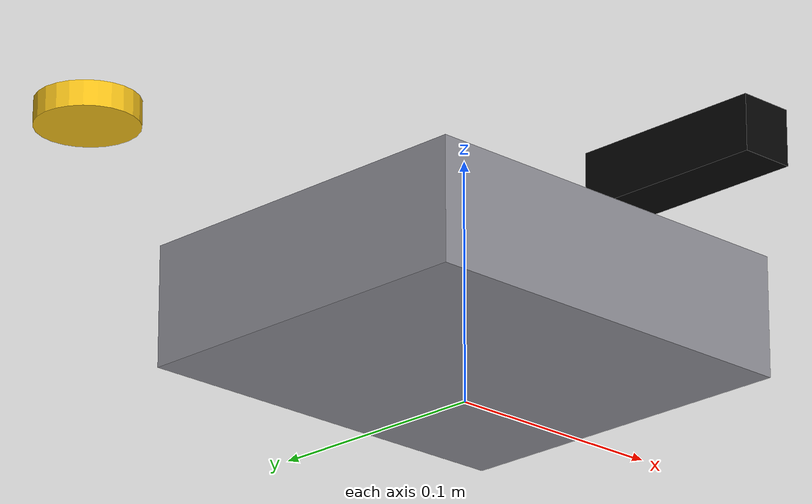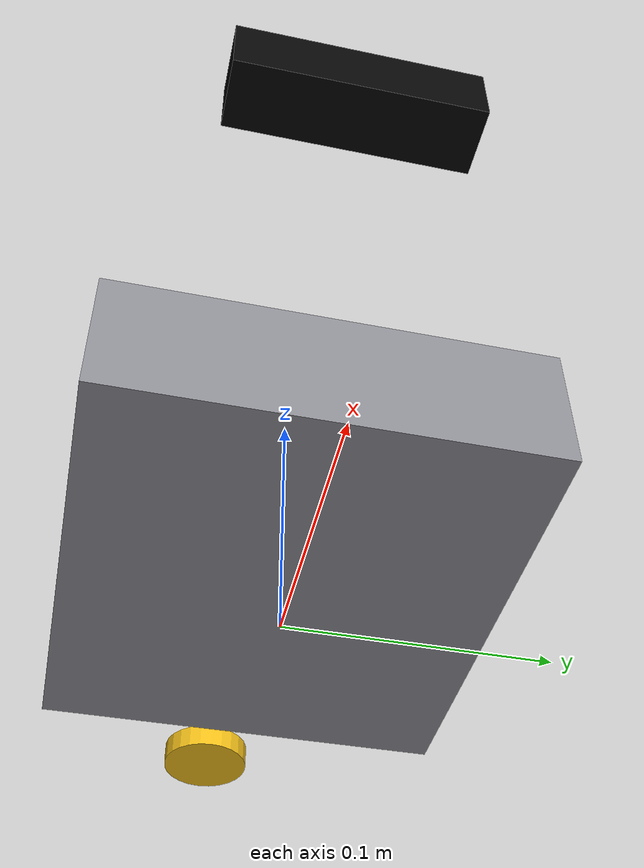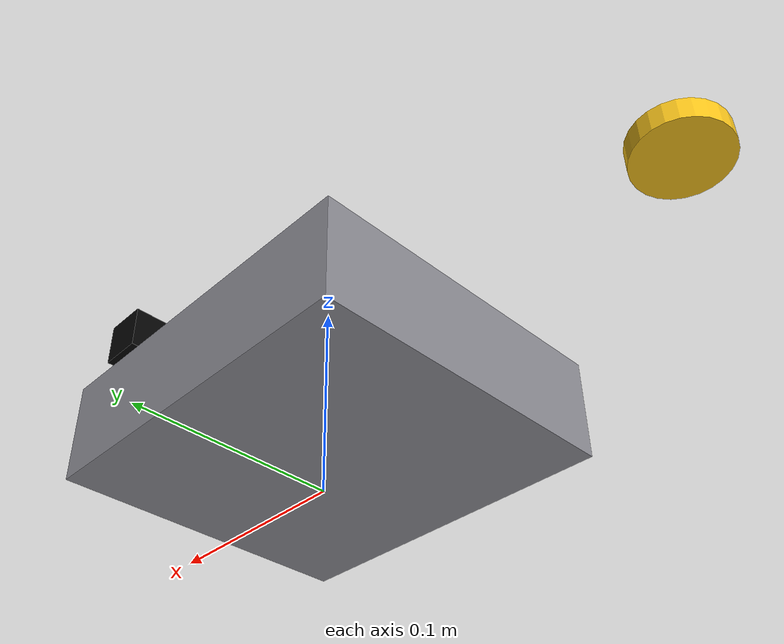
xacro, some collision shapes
<?xml version="1.0"?>
<robot xmlns:xacro="http://www.ros.org/wiki/xacro" name="mari">
  <xacro:arg name="use_mesh_visual" default="true"/>
  <xacro:arg name="sim_camera_update_rate" default="15.0"/>
  <xacro:arg name="sim_camera_width" default="640"/>
  <xacro:arg name="sim_camera_height" default="480"/>
  <xacro:arg name="sim_camera_visualize" default="true"/>
  <xacro:property name="mesh_file" value="package://trashbot_description/meshes/mari_visual_mesh.stl"/>

  <xacro:property name="base_length" value="0.1776"/>
  <xacro:property name="base_width" value="0.1580"/>
  <xacro:property name="base_height" value="0.0504"/>
  <xacro:property name="base_mass" value="6.0"/>
  <xacro:property name="base_link_z" value="${base_height / 2.0}"/>
  <!-- Onshape STL export axis correction: keep ROS links fixed and rotate only the visual mesh. -->
  <xacro:property name="chassis_mesh_yaw" value="${pi / 2.0}"/>
  <xacro:property name="chassis_mesh_min_z" value="-0.021884"/>
  <xacro:property name="chassis_mesh_z" value="${-base_link_z - chassis_mesh_min_z}"/>

  <!-- Collision stays simple even if the visual mesh includes tracks/sprockets. -->
  <xacro:property name="collision_length" value="${base_length}"/>
  <xacro:property name="collision_width" value="${base_width}"/>
  <xacro:property name="collision_height" value="${base_height}"/>
  <xacro:property name="collision_z" value="0.012"/>

  <!-- Tracked drive geometry first Onshape measurements. -->
  <xacro:property name="track_width" value="0.137553"/>
  <xacro:property name="half_track_width" value="${track_width / 2.0}"/>
  <xacro:property name="effective_track_radius" value="0.021"/>

  <!-- Actual asymmetric drive sprocket centers from base_link, kept as CAD reference. -->
  <xacro:property name="left_drive_axis_x" value="-0.057871"/>
  <xacro:property name="left_drive_axis_y" value="0.068776"/>
  <xacro:property name="left_drive_axis_z" value="-0.000300"/>
  <xacro:property name="right_drive_axis_x" value="0.058000"/>
  <xacro:property name="right_drive_axis_y" value="-0.068777"/>
  <xacro:property name="right_drive_axis_z" value="0.000000"/>

  <xacro:property name="track_contact_x_offset" value="0.058"/>
  <xacro:property name="front_track_wheel_x" value="${track_contact_x_offset}"/>
  <xacro:property name="rear_track_wheel_x" value="${-track_contact_x_offset}"/>
  <xacro:property name="left_track_wheel_y" value="${half_track_width}"/>
  <xacro:property name="right_track_wheel_y" value="${-half_track_width}"/>
  <xacro:property name="virtual_wheel_z" value="${effective_track_radius - base_link_z}"/>
  <xacro:property name="virtual_wheel_width" value="0.014"/>
  <xacro:property name="virtual_wheel_mass" value="0.08"/>

  <!-- D435i mount measurement from base_link_mc to camera_link_mc.
       2026-04-28: lowered 10 mm from the 2026-04-27 0.122174 m reference. -->
  <xacro:property name="camera_x" value="0.127688"/>
  <xacro:property name="camera_y" value="-0.001695"/>
  <xacro:property name="camera_z" value="0.112174"/>
  <xacro:property name="camera_roll" value="0.0"/>
  <xacro:property name="camera_pitch" value="0.0"/>
  <xacro:property name="camera_yaw" value="0.0"/>
  <xacro:property name="sim_camera_horizontal_fov" value="1.3962634"/>
  <xacro:property name="sim_camera_near_clip" value="0.10"/>
  <xacro:property name="sim_camera_far_clip" value="6.00"/>

  <!-- BNO08x first Onshape measurement from base_link_mc to imu_link_mc. -->
  <xacro:property name="imu_x" value="-0.010844"/>
  <xacro:property name="imu_y" value="0.022228"/>
  <xacro:property name="imu_z" value="0.018394"/>
  <xacro:property name="imu_roll" value="0.0"/>
  <xacro:property name="imu_pitch" value="0.0"/>
  <xacro:property name="imu_yaw" value="0.0"/>
  <xacro:property name="sim_imu_update_rate" value="100.0"/>

  <!-- GPS first Onshape measurement from base_link_mc to gps_link_mc. -->
  <xacro:property name="gps_x" value="-0.194160"/>
  <xacro:property name="gps_y" value="-0.000001"/>
  <xacro:property name="gps_z" value="0.037943"/>
  <xacro:property name="gps_r" value="0.020"/>
  <xacro:property name="gps_h" value="0.010"/>
  <xacro:property name="sim_gps_update_rate" value="5.0"/>

  <material name="chassis_gray">
    <color rgba="0.55 0.55 0.58 1.0"/>
  </material>
  <material name="sensor_black">
    <color rgba="0.02 0.02 0.02 1.0"/>
  </material>
  <material name="imu_green">
    <color rgba="0.0 0.65 0.25 1.0"/>
  </material>
  <material name="gps_yellow">
    <color rgba="0.95 0.75 0.1 1.0"/>
  </material>
  <material name="virtual_wheel_dark">
    <color rgba="0.03 0.03 0.03 1.0"/>
  </material>

  <xacro:macro name="box_inertial" params="mass x y z">
    <inertial>
      <mass value="${mass}"/>
      <inertia
        ixx="${mass * (y*y + z*z) / 12.0}"
        ixy="0.0"
        ixz="0.0"
        iyy="${mass * (x*x + z*z) / 12.0}"
        iyz="0.0"
        izz="${mass * (x*x + y*y) / 12.0}"/>
    </inertial>
  </xacro:macro>

  <xacro:macro name="cylinder_inertial" params="mass radius length">
    <inertial>
      <mass value="${mass}"/>
      <inertia
        ixx="${mass * (3.0 * radius * radius + length * length) / 12.0}"
        ixy="0.0"
        ixz="0.0"
        iyy="${mass * radius * radius / 2.0}"
        iyz="0.0"
        izz="${mass * (3.0 * radius * radius + length * length) / 12.0}"/>
    </inertial>
  </xacro:macro>

  <xacro:macro name="virtual_track_wheel" params="prefix x y">
    <link name="${prefix}_virtual_track_wheel_link">
      <collision>
        <origin xyz="0 0 0" rpy="${pi / 2.0} 0 0"/>
        <geometry>
          <cylinder radius="${effective_track_radius}" length="${virtual_wheel_width}"/>
        </geometry>
      </collision>
      <xacro:cylinder_inertial
        mass="${virtual_wheel_mass}"
        radius="${effective_track_radius}"
        length="${virtual_wheel_width}"/>
    </link>

    <joint name="${prefix}_virtual_track_wheel_joint" type="continuous">
      <parent link="base_link"/>
      <child link="${prefix}_virtual_track_wheel_link"/>
      <origin xyz="${x} ${y} ${virtual_wheel_z}" rpy="0 0 0"/>
      <axis xyz="0 1 0"/>
    </joint>
  </xacro:macro>

  <link name="base_footprint"/>
  <link name="base_link"/>

  <joint name="base_footprint_to_base_link" type="fixed">
    <parent link="base_footprint"/>
    <child link="base_link"/>
    <origin xyz="0 0 ${base_link_z}" rpy="0 0 0"/>
  </joint>

  <link name="chassis_link">
    <visual name="mesh_visual">
      <xacro:if value="$(arg use_mesh_visual)">
      <origin xyz="0 0 ${chassis_mesh_z}" rpy="0 0 ${chassis_mesh_yaw}"/>
      <geometry>
        <mesh filename="${mesh_file}"/>
      </geometry>
      <material name="chassis_gray"/>
      </xacro:if>
      <xacro:unless value="$(arg use_mesh_visual)">
      <origin xyz="0 0 0" rpy="0 0 0"/>
      <geometry>
        <box size="${base_length} ${base_width} ${base_height}"/>
      </geometry>
      <material name="chassis_gray"/>
      </xacro:unless>
    </visual>
    <collision>
      <origin xyz="0 0 ${collision_z}" rpy="0 0 0"/>
      <geometry>
        <box size="${collision_length} ${collision_width} ${collision_height}"/>
      </geometry>
    </collision>
    <xacro:box_inertial
      mass="${base_mass}"
      x="${collision_length}"
      y="${collision_width}"
      z="${collision_height}"/>
  </link>

  <joint name="base_to_chassis" type="fixed">
    <parent link="base_link"/>
    <child link="chassis_link"/>
    <origin xyz="0 0 0" rpy="0 0 0"/>
  </joint>

  <xacro:virtual_track_wheel prefix="left_front" x="${front_track_wheel_x}" y="${left_track_wheel_y}"/>
  <xacro:virtual_track_wheel prefix="right_front" x="${front_track_wheel_x}" y="${right_track_wheel_y}"/>
  <xacro:virtual_track_wheel prefix="left_rear" x="${rear_track_wheel_x}" y="${left_track_wheel_y}"/>
  <xacro:virtual_track_wheel prefix="right_rear" x="${rear_track_wheel_x}" y="${right_track_wheel_y}"/>

  <link name="camera_link">
    <visual>
      <geometry>
        <box size="0.025 0.09 0.025"/>
      </geometry>
      <material name="sensor_black"/>
    </visual>
    <collision>
      <geometry>
        <box size="0.025 0.09 0.025"/>
      </geometry>
    </collision>
    <xacro:box_inertial mass="0.08" x="0.025" y="0.09" z="0.025"/>
  </link>

  <joint name="base_to_camera" type="fixed">
    <parent link="base_link"/>
    <child link="camera_link"/>
    <origin xyz="${camera_x} ${camera_y} ${camera_z}" rpy="${camera_roll} ${camera_pitch} ${camera_yaw}"/>
  </joint>

  <!-- D435i optical frame convention: z forward, x right, y down. -->
  <link name="camera_color_optical_frame"/>
  <joint name="camera_link_to_color_optical_frame" type="fixed">
    <parent link="camera_link"/>
    <child link="camera_color_optical_frame"/>
    <origin xyz="0 0 0" rpy="${-pi / 2.0} 0 ${-pi / 2.0}"/>
  </joint>

  <link name="camera_depth_optical_frame"/>
  <joint name="camera_link_to_depth_optical_frame" type="fixed">
    <parent link="camera_link"/>
    <child link="camera_depth_optical_frame"/>
    <origin xyz="0 0 0" rpy="${-pi / 2.0} 0 ${-pi / 2.0}"/>
  </joint>

  <link name="imu_link">
    <visual>
      <geometry>
        <box size="0.035 0.035 0.008"/>
      </geometry>
      <material name="imu_green"/>
    </visual>
    <collision>
      <geometry>
        <box size="0.035 0.035 0.008"/>
      </geometry>
    </collision>
    <xacro:box_inertial mass="0.01" x="0.035" y="0.035" z="0.008"/>
  </link>

  <joint name="base_to_imu" type="fixed">
    <parent link="base_link"/>
    <child link="imu_link"/>
    <origin xyz="${imu_x} ${imu_y} ${imu_z}" rpy="${imu_roll} ${imu_pitch} ${imu_yaw}"/>
  </joint>

  <link name="gps_link">
    <visual>
      <geometry>
        <cylinder radius="${gps_r}" length="${gps_h}"/>
      </geometry>
      <material name="gps_yellow"/>
    </visual>
    <collision>
      <geometry>
        <cylinder radius="${gps_r}" length="${gps_h}"/>
      </geometry>
    </collision>
    <xacro:cylinder_inertial mass="0.04" radius="${gps_r}" length="${gps_h}"/>
  </link>

  <joint name="base_to_gps" type="fixed">
    <parent link="base_link"/>
    <child link="gps_link"/>
    <origin xyz="${gps_x} ${gps_y} ${gps_z}" rpy="0 0 0"/>
  </joint>

  <gazebo reference="left_front_virtual_track_wheel_link">
    <material>Gazebo/DarkGrey</material>
    <mu1>0.2</mu1>
    <mu2>0.2</mu2>
  </gazebo>

  <gazebo reference="right_front_virtual_track_wheel_link">
    <material>Gazebo/DarkGrey</material>
    <mu1>0.2</mu1>
    <mu2>0.2</mu2>
  </gazebo>

  <gazebo reference="left_rear_virtual_track_wheel_link">
    <material>Gazebo/DarkGrey</material>
    <mu1>0.2</mu1>
    <mu2>0.2</mu2>
  </gazebo>

  <gazebo reference="right_rear_virtual_track_wheel_link">
    <material>Gazebo/DarkGrey</material>
    <mu1>0.2</mu1>
    <mu2>0.2</mu2>
  </gazebo>

  <gazebo reference="imu_link">
    <sensor name="mari_imu" type="imu">
      <always_on>true</always_on>
      <update_rate>${sim_imu_update_rate}</update_rate>
      <visualize>false</visualize>
      <imu>
        <angular_velocity>
          <x>
            <noise type="gaussian">
              <mean>0.0</mean>
              <stddev>0.0002</stddev>
            </noise>
          </x>
          <y>
            <noise type="gaussian">
              <mean>0.0</mean>
              <stddev>0.0002</stddev>
            </noise>
          </y>
          <z>
            <noise type="gaussian">
              <mean>0.0</mean>
              <stddev>0.0002</stddev>
            </noise>
          </z>
        </angular_velocity>
        <linear_acceleration>
          <x>
            <noise type="gaussian">
              <mean>0.0</mean>
              <stddev>0.01</stddev>
            </noise>
          </x>
          <y>
            <noise type="gaussian">
              <mean>0.0</mean>
              <stddev>0.01</stddev>
            </noise>
          </y>
          <z>
            <noise type="gaussian">
              <mean>0.0</mean>
              <stddev>0.01</stddev>
            </noise>
          </z>
        </linear_acceleration>
      </imu>
      <plugin name="mari_imu_sensor" filename="libgazebo_ros_imu_sensor.so">
        <initial_orientation_as_reference>false</initial_orientation_as_reference>
        <frame_name>imu_link</frame_name>
        <ros>
          <remapping>~/out:=/imu/data</remapping>
        </ros>
      </plugin>
    </sensor>
  </gazebo>

  <gazebo reference="camera_link">
    <sensor name="mari_rgbd_camera" type="depth">
      <always_on>true</always_on>
      <update_rate>$(arg sim_camera_update_rate)</update_rate>
      <visualize>$(arg sim_camera_visualize)</visualize>
      <camera name="mari_rgbd_camera_optics">
        <horizontal_fov>${sim_camera_horizontal_fov}</horizontal_fov>
        <image>
          <width>$(arg sim_camera_width)</width>
          <height>$(arg sim_camera_height)</height>
          <format>R8G8B8</format>
        </image>
        <depth_camera>
        </depth_camera>
        <clip>
          <near>${sim_camera_near_clip}</near>
          <far>${sim_camera_far_clip}</far>
        </clip>
        <noise>
          <type>gaussian</type>
          <mean>0.0</mean>
          <stddev>0.005</stddev>
        </noise>
      </camera>
      <plugin name="mari_rgbd_camera_controller" filename="libgazebo_ros_camera.so">
        <ros>
          <remapping>camera/image_raw:=/camera/camera/color/image_raw</remapping>
          <remapping>camera/camera_info:=/camera/camera/color/camera_info</remapping>
          <remapping>camera/depth/image_raw:=/camera/camera/aligned_depth_to_color/image_raw</remapping>
          <remapping>camera/depth/camera_info:=/camera/camera/aligned_depth_to_color/camera_info</remapping>
          <remapping>camera/points:=/camera/camera/depth/color/points</remapping>
        </ros>
        <camera_name>camera</camera_name>
        <frame_name>camera_color_optical_frame</frame_name>
        <hack_baseline>0.0</hack_baseline>
        <min_depth>${sim_camera_near_clip}</min_depth>
        <max_depth>${sim_camera_far_clip}</max_depth>
      </plugin>
    </sensor>
  </gazebo>

  <gazebo reference="gps_link">
    <sensor name="mari_gps" type="gps">
      <always_on>true</always_on>
      <update_rate>${sim_gps_update_rate}</update_rate>
      <visualize>false</visualize>
      <gps>
        <position_sensing>
          <horizontal>
            <noise type="gaussian">
              <mean>0.0</mean>
              <stddev>0.0002</stddev>
            </noise>
          </horizontal>
          <vertical>
            <noise type="gaussian">
              <mean>0.0</mean>
              <stddev>0.0002</stddev>
            </noise>
          </vertical>
        </position_sensing>
      </gps>
      <plugin name="mari_gps_sensor" filename="libgazebo_ros_gps_sensor.so">
        <ros>
          <namespace>/gps</namespace>
          <remapping>~/out:=fix</remapping>
          <remapping>~/vel:=velocity</remapping>
        </ros>
      </plugin>
    </sensor>
  </gazebo>

  <gazebo>
    <plugin name="mari_planar_move" filename="libgazebo_ros_planar_move.so">
      <ros>
        <remapping>/tf:=tf</remapping>
      </ros>

      <update_rate>100</update_rate>
      <publish_rate>50</publish_rate>

      <command_topic>cmd_vel</command_topic>
      <odometry_topic>odom</odometry_topic>
      <odometry_frame>odom</odometry_frame>
      <robot_base_frame>base_footprint</robot_base_frame>

      <publish_odom>true</publish_odom>
      <publish_odom_tf>true</publish_odom_tf>

      <covariance_x>0.0001</covariance_x>
      <covariance_y>0.0001</covariance_y>
      <covariance_yaw>0.01</covariance_yaw>
    </plugin>
  </gazebo>
</robot>
